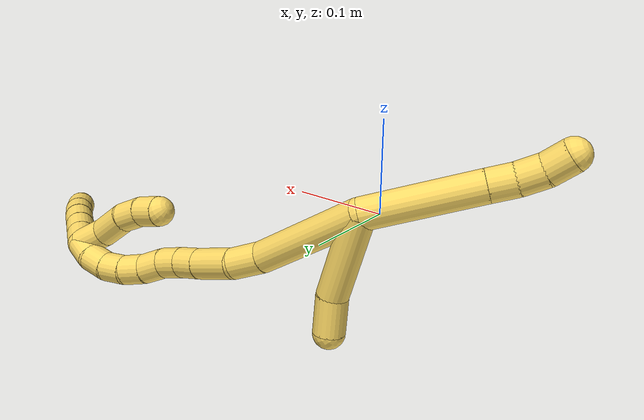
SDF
<sdf version="1.7">
 <world name="default">
  <model name="5">
   <static>0</static>
   <link name="5">
    <collision name="collision-cylinder-e_1_2_8">
     <pose>-0.019311 0.003249 -0.040401 -3.06135 -0.44463 2.79011</pose>
     <geometry><cylinder><radius>0.0125</radius><length>0.089792</length></cylinder></geometry>
     <surface>
      <friction><ode><mu>1.16</mu><mu2>1.16</mu2><slip1>0</slip1><slip2>0</slip2></ode></friction>
      <contact><ode><kp>1e+06</kp><kd>1</kd><max_vel>0</max_vel><min_depth>0.001</min_depth></ode></contact>
     </surface>
    </collision>
    <visual name="visual-cylinder-e_1_2_8">
     <pose>-0.019311 0.003249 -0.040401 -3.06135 -0.44463 2.79011</pose>
     <geometry><cylinder><radius>0.0125</radius><length>0.089792</length></cylinder></geometry>
     <material><ambient>1 0.858824 0.4 1</ambient></material>
    </visual>
    <collision name="collision-cylinder-e_2_8_9">
     <pose>-0.043101 0.007225 -0.089809 -3.06096 -0.460179 2.80053</pose>
     <geometry><cylinder><radius>0.0125</radius><length>0.020174</length></cylinder></geometry>
     <surface>
      <friction><ode><mu>1.16</mu><mu2>1.16</mu2><slip1>0</slip1><slip2>0</slip2></ode></friction>
      <contact><ode><kp>1e+06</kp><kd>1</kd><max_vel>0</max_vel><min_depth>0.001</min_depth></ode></contact>
     </surface>
    </collision>
    <visual name="visual-cylinder-e_2_8_9">
     <pose>-0.043101 0.007225 -0.089809 -3.06096 -0.460179 2.80053</pose>
     <geometry><cylinder><radius>0.0125</radius><length>0.020174</length></cylinder></geometry>
     <material><ambient>1 0.858824 0.4 1</ambient></material>
    </visual>
    <collision name="collision-cylinder-e_3_9_10">
     <pose>-0.050301 0.008608 -0.108424 -3.07354 -0.275332 2.65972</pose>
     <geometry><cylinder><radius>0.0125</radius><length>0.020011</length></cylinder></geometry>
     <surface>
      <friction><ode><mu>1.16</mu><mu2>1.16</mu2><slip1>0</slip1><slip2>0</slip2></ode></friction>
      <contact><ode><kp>1e+06</kp><kd>1</kd><max_vel>0</max_vel><min_depth>0.001</min_depth></ode></contact>
     </surface>
    </collision>
    <visual name="visual-cylinder-e_3_9_10">
     <pose>-0.050301 0.008608 -0.108424 -3.07354 -0.275332 2.65972</pose>
     <geometry><cylinder><radius>0.0125</radius><length>0.020011</length></cylinder></geometry>
     <material><ambient>1 0.858824 0.4 1</ambient></material>
    </visual>
    <collision name="collision-cylinder-e_4_10_6">
     <pose>-0.053655 0.010644 -0.127926 -3.00291 -0.063272 0.855097</pose>
     <geometry><cylinder><radius>0.0125</radius><length>0.020023</length></cylinder></geometry>
     <surface>
      <friction><ode><mu>1.16</mu><mu2>1.16</mu2><slip1>0</slip1><slip2>0</slip2></ode></friction>
      <contact><ode><kp>1e+06</kp><kd>1</kd><max_vel>0</max_vel><min_depth>0.001</min_depth></ode></contact>
     </surface>
    </collision>
    <visual name="visual-cylinder-e_4_10_6">
     <pose>-0.053655 0.010644 -0.127926 -3.00291 -0.063272 0.855097</pose>
     <geometry><cylinder><radius>0.0125</radius><length>0.020023</length></cylinder></geometry>
     <material><ambient>1 0.858824 0.4 1</ambient></material>
    </visual>
    <collision name="collision-cylinder-e_1_2_11">
     <pose>-0.016694 -0.014335 0.027116 0.486307 -0.498434 -0.1261</pose>
     <geometry><cylinder><radius>0.0125</radius><length>0.069843</length></cylinder></geometry>
     <surface>
      <friction><ode><mu>1.16</mu><mu2>1.16</mu2><slip1>0</slip1><slip2>0</slip2></ode></friction>
      <contact><ode><kp>1e+06</kp><kd>1</kd><max_vel>0</max_vel><min_depth>0.001</min_depth></ode></contact>
     </surface>
    </collision>
    <visual name="visual-cylinder-e_1_2_11">
     <pose>-0.016694 -0.014335 0.027116 0.486307 -0.498434 -0.1261</pose>
     <geometry><cylinder><radius>0.0125</radius><length>0.069843</length></cylinder></geometry>
     <material><ambient>1 0.858824 0.4 1</ambient></material>
    </visual>
    <collision name="collision-cylinder-e_2_11_5">
     <pose>-0.041714 -0.037479 0.063203 0.776347 -0.584924 -0.245016</pose>
     <geometry><cylinder><radius>0.0125</radius><length>0.030157</length></cylinder></geometry>
     <surface>
      <friction><ode><mu>1.16</mu><mu2>1.16</mu2><slip1>0</slip1><slip2>0</slip2></ode></friction>
      <contact><ode><kp>1e+06</kp><kd>1</kd><max_vel>0</max_vel><min_depth>0.001</min_depth></ode></contact>
     </surface>
    </collision>
    <visual name="visual-cylinder-e_2_11_5">
     <pose>-0.041714 -0.037479 0.063203 0.776347 -0.584924 -0.245016</pose>
     <geometry><cylinder><radius>0.0125</radius><length>0.030157</length></cylinder></geometry>
     <material><ambient>1 0.858824 0.4 1</ambient></material>
    </visual>
    <collision name="collision-cylinder-e_1_2_12">
     <pose>0.000942 0.002342 0.046941 -0.049844 0.020039 -0.0005</pose>
     <geometry><cylinder><radius>0.0125</radius><length>0.094018</length></cylinder></geometry>
     <surface>
      <friction><ode><mu>1.16</mu><mu2>1.16</mu2><slip1>0</slip1><slip2>0</slip2></ode></friction>
      <contact><ode><kp>1e+06</kp><kd>1</kd><max_vel>0</max_vel><min_depth>0.001</min_depth></ode></contact>
     </surface>
    </collision>
    <visual name="visual-cylinder-e_1_2_12">
     <pose>0.000942 0.002342 0.046941 -0.049844 0.020039 -0.0005</pose>
     <geometry><cylinder><radius>0.0125</radius><length>0.094018</length></cylinder></geometry>
     <material><ambient>1 0.858824 0.4 1</ambient></material>
    </visual>
    <collision name="collision-cylinder-e_2_12_13">
     <pose>0.004945 0.005762 0.106868 -0.082873 0.230749 -0.009609</pose>
     <geometry><cylinder><radius>0.0125</radius><length>0.02677</length></cylinder></geometry>
     <surface>
      <friction><ode><mu>1.16</mu><mu2>1.16</mu2><slip1>0</slip1><slip2>0</slip2></ode></friction>
      <contact><ode><kp>1e+06</kp><kd>1</kd><max_vel>0</max_vel><min_depth>0.001</min_depth></ode></contact>
     </surface>
    </collision>
    <visual name="visual-cylinder-e_2_12_13">
     <pose>0.004945 0.005762 0.106868 -0.082873 0.230749 -0.009609</pose>
     <geometry><cylinder><radius>0.0125</radius><length>0.02677</length></cylinder></geometry>
     <material><ambient>1 0.858824 0.4 1</ambient></material>
    </visual>
    <collision name="collision-cylinder-e_3_13_14">
     <pose>0.010572 0.012899 0.136872 -0.341993 0.141105 -0.024406</pose>
     <geometry><cylinder><radius>0.0125</radius><length>0.036491</length></cylinder></geometry>
     <surface>
      <friction><ode><mu>1.16</mu><mu2>1.16</mu2><slip1>0</slip1><slip2>0</slip2></ode></friction>
      <contact><ode><kp>1e+06</kp><kd>1</kd><max_vel>0</max_vel><min_depth>0.001</min_depth></ode></contact>
     </surface>
    </collision>
    <visual name="visual-cylinder-e_3_13_14">
     <pose>0.010572 0.012899 0.136872 -0.341993 0.141105 -0.024406</pose>
     <geometry><cylinder><radius>0.0125</radius><length>0.036491</length></cylinder></geometry>
     <material><ambient>1 0.858824 0.4 1</ambient></material>
    </visual>
    <collision name="collision-cylinder-e_4_14_15">
     <pose>0.014827 0.022782 0.163243 -0.388223 0.165551 -0.032617</pose>
     <geometry><cylinder><radius>0.0125</radius><length>0.02049</length></cylinder></geometry>
     <surface>
      <friction><ode><mu>1.16</mu><mu2>1.16</mu2><slip1>0</slip1><slip2>0</slip2></ode></friction>
      <contact><ode><kp>1e+06</kp><kd>1</kd><max_vel>0</max_vel><min_depth>0.001</min_depth></ode></contact>
     </surface>
    </collision>
    <visual name="visual-cylinder-e_4_14_15">
     <pose>0.014827 0.022782 0.163243 -0.388223 0.165551 -0.032617</pose>
     <geometry><cylinder><radius>0.0125</radius><length>0.02049</length></cylinder></geometry>
     <material><ambient>1 0.858824 0.4 1</ambient></material>
    </visual>
    <collision name="collision-cylinder-e_5_15_16">
     <pose>0.018443 0.029597 0.182199 -0.301847 0.189397 -0.028888</pose>
     <geometry><cylinder><radius>0.0125</radius><length>0.020483</length></cylinder></geometry>
     <surface>
      <friction><ode><mu>1.16</mu><mu2>1.16</mu2><slip1>0</slip1><slip2>0</slip2></ode></friction>
      <contact><ode><kp>1e+06</kp><kd>1</kd><max_vel>0</max_vel><min_depth>0.001</min_depth></ode></contact>
     </surface>
    </collision>
    <visual name="visual-cylinder-e_5_15_16">
     <pose>0.018443 0.029597 0.182199 -0.301847 0.189397 -0.028888</pose>
     <geometry><cylinder><radius>0.0125</radius><length>0.020483</length></cylinder></geometry>
     <material><ambient>1 0.858824 0.4 1</ambient></material>
    </visual>
    <collision name="collision-cylinder-e_6_16_17">
     <pose>0.022251 0.033207 0.202099 -0.060124 0.18021 -0.005434</pose>
     <geometry><cylinder><radius>0.0125</radius><length>0.020969</length></cylinder></geometry>
     <surface>
      <friction><ode><mu>1.16</mu><mu2>1.16</mu2><slip1>0</slip1><slip2>0</slip2></ode></friction>
      <contact><ode><kp>1e+06</kp><kd>1</kd><max_vel>0</max_vel><min_depth>0.001</min_depth></ode></contact>
     </surface>
    </collision>
    <visual name="visual-cylinder-e_6_16_17">
     <pose>0.022251 0.033207 0.202099 -0.060124 0.18021 -0.005434</pose>
     <geometry><cylinder><radius>0.0125</radius><length>0.020969</length></cylinder></geometry>
     <material><ambient>1 0.858824 0.4 1</ambient></material>
    </visual>
    <collision name="collision-cylinder-e_7_17_18">
     <pose>0.027608 0.035439 0.221704 -0.17147 0.352718 -0.03063</pose>
     <geometry><cylinder><radius>0.0125</radius><length>0.020136</length></cylinder></geometry>
     <surface>
      <friction><ode><mu>1.16</mu><mu2>1.16</mu2><slip1>0</slip1><slip2>0</slip2></ode></friction>
      <contact><ode><kp>1e+06</kp><kd>1</kd><max_vel>0</max_vel><min_depth>0.001</min_depth></ode></contact>
     </surface>
    </collision>
    <visual name="visual-cylinder-e_7_17_18">
     <pose>0.027608 0.035439 0.221704 -0.17147 0.352718 -0.03063</pose>
     <geometry><cylinder><radius>0.0125</radius><length>0.020136</length></cylinder></geometry>
     <material><ambient>1 0.858824 0.4 1</ambient></material>
    </visual>
    <collision name="collision-cylinder-e_8_18_19">
     <pose>0.034638 0.040809 0.239699 -0.408296 0.359141 -0.075128</pose>
     <geometry><cylinder><radius>0.0125</radius><length>0.020215</length></cylinder></geometry>
     <surface>
      <friction><ode><mu>1.16</mu><mu2>1.16</mu2><slip1>0</slip1><slip2>0</slip2></ode></friction>
      <contact><ode><kp>1e+06</kp><kd>1</kd><max_vel>0</max_vel><min_depth>0.001</min_depth></ode></contact>
     </surface>
    </collision>
    <visual name="visual-cylinder-e_8_18_19">
     <pose>0.034638 0.040809 0.239699 -0.408296 0.359141 -0.075128</pose>
     <geometry><cylinder><radius>0.0125</radius><length>0.020215</length></cylinder></geometry>
     <material><ambient>1 0.858824 0.4 1</ambient></material>
    </visual>
    <collision name="collision-cylinder-e_9_19_20">
     <pose>0.042359 0.050585 0.255469 -0.704268 0.421462 -0.156877</pose>
     <geometry><cylinder><radius>0.0125</radius><length>0.020377</length></cylinder></geometry>
     <surface>
      <friction><ode><mu>1.16</mu><mu2>1.16</mu2><slip1>0</slip1><slip2>0</slip2></ode></friction>
      <contact><ode><kp>1e+06</kp><kd>1</kd><max_vel>0</max_vel><min_depth>0.001</min_depth></ode></contact>
     </surface>
    </collision>
    <visual name="visual-cylinder-e_9_19_20">
     <pose>0.042359 0.050585 0.255469 -0.704268 0.421462 -0.156877</pose>
     <geometry><cylinder><radius>0.0125</radius><length>0.020377</length></cylinder></geometry>
     <material><ambient>1 0.858824 0.4 1</ambient></material>
    </visual>
    <collision name="collision-cylinder-e_10_20_1">
     <pose>0.049418 0.064636 0.267812 -0.99112 0.292532 -0.158931</pose>
     <geometry><cylinder><radius>0.0125</radius><length>0.020051</length></cylinder></geometry>
     <surface>
      <friction><ode><mu>1.16</mu><mu2>1.16</mu2><slip1>0</slip1><slip2>0</slip2></ode></friction>
      <contact><ode><kp>1e+06</kp><kd>1</kd><max_vel>0</max_vel><min_depth>0.001</min_depth></ode></contact>
     </surface>
    </collision>
    <visual name="visual-cylinder-e_10_20_1">
     <pose>0.049418 0.064636 0.267812 -0.99112 0.292532 -0.158931</pose>
     <geometry><cylinder><radius>0.0125</radius><length>0.020051</length></cylinder></geometry>
     <material><ambient>1 0.858824 0.4 1</ambient></material>
    </visual>
    <collision name="collision-cylinder-e_1_1_21">
     <pose>0.050331 0.073516 0.259609 -3.07864 -0.145594 2.32639</pose>
     <geometry><cylinder><radius>0.0125</radius><length>0.027264</length></cylinder></geometry>
     <surface>
      <friction><ode><mu>1.16</mu><mu2>1.16</mu2><slip1>0</slip1><slip2>0</slip2></ode></friction>
      <contact><ode><kp>1e+06</kp><kd>1</kd><max_vel>0</max_vel><min_depth>0.001</min_depth></ode></contact>
     </surface>
    </collision>
    <visual name="visual-cylinder-e_1_1_21">
     <pose>0.050331 0.073516 0.259609 -3.07864 -0.145594 2.32639</pose>
     <geometry><cylinder><radius>0.0125</radius><length>0.027264</length></cylinder></geometry>
     <material><ambient>1 0.858824 0.4 1</ambient></material>
    </visual>
    <collision name="collision-cylinder-e_2_21_22">
     <pose>0.04963 0.07419 0.230941 3.13009 0.083723 2.8688</pose>
     <geometry><cylinder><radius>0.0125</radius><length>0.030524</length></cylinder></geometry>
     <surface>
      <friction><ode><mu>1.16</mu><mu2>1.16</mu2><slip1>0</slip1><slip2>0</slip2></ode></friction>
      <contact><ode><kp>1e+06</kp><kd>1</kd><max_vel>0</max_vel><min_depth>0.001</min_depth></ode></contact>
     </surface>
    </collision>
    <visual name="visual-cylinder-e_2_21_22">
     <pose>0.04963 0.07419 0.230941 3.13009 0.083723 2.8688</pose>
     <geometry><cylinder><radius>0.0125</radius><length>0.030524</length></cylinder></geometry>
     <material><ambient>1 0.858824 0.4 1</ambient></material>
    </visual>
    <collision name="collision-cylinder-e_3_22_23">
     <pose>0.04971 0.072629 0.205233 3.01037 -0.112494 -1.41703</pose>
     <geometry><cylinder><radius>0.0125</radius><length>0.021316</length></cylinder></geometry>
     <surface>
      <friction><ode><mu>1.16</mu><mu2>1.16</mu2><slip1>0</slip1><slip2>0</slip2></ode></friction>
      <contact><ode><kp>1e+06</kp><kd>1</kd><max_vel>0</max_vel><min_depth>0.001</min_depth></ode></contact>
     </surface>
    </collision>
    <visual name="visual-cylinder-e_3_22_23">
     <pose>0.04971 0.072629 0.205233 3.01037 -0.112494 -1.41703</pose>
     <geometry><cylinder><radius>0.0125</radius><length>0.021316</length></cylinder></geometry>
     <material><ambient>1 0.858824 0.4 1</ambient></material>
    </visual>
    <collision name="collision-cylinder-e_4_23_4">
     <pose>0.046513 0.067711 0.185107 2.7899 -0.192595 -0.995895</pose>
     <geometry><cylinder><radius>0.0125</radius><length>0.020896</length></cylinder></geometry>
     <surface>
      <friction><ode><mu>1.16</mu><mu2>1.16</mu2><slip1>0</slip1><slip2>0</slip2></ode></friction>
      <contact><ode><kp>1e+06</kp><kd>1</kd><max_vel>0</max_vel><min_depth>0.001</min_depth></ode></contact>
     </surface>
    </collision>
    <visual name="visual-cylinder-e_4_23_4">
     <pose>0.046513 0.067711 0.185107 2.7899 -0.192595 -0.995895</pose>
     <geometry><cylinder><radius>0.0125</radius><length>0.020896</length></cylinder></geometry>
     <material><ambient>1 0.858824 0.4 1</ambient></material>
    </visual>
    <collision name="collision-cylinder-e_1_1_24">
     <pose>0.050807 0.081112 0.278211 -1.02395 -0.150724 0.08481</pose>
     <geometry><cylinder><radius>0.0125</radius><length>0.02</length></cylinder></geometry>
     <surface>
      <friction><ode><mu>1.16</mu><mu2>1.16</mu2><slip1>0</slip1><slip2>0</slip2></ode></friction>
      <contact><ode><kp>1e+06</kp><kd>1</kd><max_vel>0</max_vel><min_depth>0.001</min_depth></ode></contact>
     </surface>
    </collision>
    <visual name="visual-cylinder-e_1_1_24">
     <pose>0.050807 0.081112 0.278211 -1.02395 -0.150724 0.08481</pose>
     <geometry><cylinder><radius>0.0125</radius><length>0.02</length></cylinder></geometry>
     <material><ambient>1 0.858824 0.4 1</ambient></material>
    </visual>
    <collision name="collision-cylinder-e_2_24_25">
     <pose>0.047807 0.098002 0.288495 -1.02377 -0.150432 0.084627</pose>
     <geometry><cylinder><radius>0.0125</radius><length>0.02</length></cylinder></geometry>
     <surface>
      <friction><ode><mu>1.16</mu><mu2>1.16</mu2><slip1>0</slip1><slip2>0</slip2></ode></friction>
      <contact><ode><kp>1e+06</kp><kd>1</kd><max_vel>0</max_vel><min_depth>0.001</min_depth></ode></contact>
     </surface>
    </collision>
    <visual name="visual-cylinder-e_2_24_25">
     <pose>0.047807 0.098002 0.288495 -1.02377 -0.150432 0.084627</pose>
     <geometry><cylinder><radius>0.0125</radius><length>0.02</length></cylinder></geometry>
     <material><ambient>1 0.858824 0.4 1</ambient></material>
    </visual>
    <collision name="collision-cylinder-e_3_25_26">
     <pose>0.044637 0.114682 0.299056 -0.988897 -0.167944 0.090692</pose>
     <geometry><cylinder><radius>0.0125</radius><length>0.02</length></cylinder></geometry>
     <surface>
      <friction><ode><mu>1.16</mu><mu2>1.16</mu2><slip1>0</slip1><slip2>0</slip2></ode></friction>
      <contact><ode><kp>1e+06</kp><kd>1</kd><max_vel>0</max_vel><min_depth>0.001</min_depth></ode></contact>
     </surface>
    </collision>
    <visual name="visual-cylinder-e_3_25_26">
     <pose>0.044637 0.114682 0.299056 -0.988897 -0.167944 0.090692</pose>
     <geometry><cylinder><radius>0.0125</radius><length>0.02</length></cylinder></geometry>
     <material><ambient>1 0.858824 0.4 1</ambient></material>
    </visual>
    <collision name="collision-cylinder-e_4_26_27">
     <pose>0.040426 0.130813 0.310064 -0.954767 -0.256764 0.133358</pose>
     <geometry><cylinder><radius>0.0125</radius><length>0.02</length></cylinder></geometry>
     <surface>
      <friction><ode><mu>1.16</mu><mu2>1.16</mu2><slip1>0</slip1><slip2>0</slip2></ode></friction>
      <contact><ode><kp>1e+06</kp><kd>1</kd><max_vel>0</max_vel><min_depth>0.001</min_depth></ode></contact>
     </surface>
    </collision>
    <visual name="visual-cylinder-e_4_26_27">
     <pose>0.040426 0.130813 0.310064 -0.954767 -0.256764 0.133358</pose>
     <geometry><cylinder><radius>0.0125</radius><length>0.02</length></cylinder></geometry>
     <material><ambient>1 0.858824 0.4 1</ambient></material>
    </visual>
    <collision name="collision-cylinder-e_5_27_3">
     <pose>0.03445 0.146485 0.320916 -0.975848 -0.350764 0.18754</pose>
     <geometry><cylinder><radius>0.0125</radius><length>0.02</length></cylinder></geometry>
     <surface>
      <friction><ode><mu>1.16</mu><mu2>1.16</mu2><slip1>0</slip1><slip2>0</slip2></ode></friction>
      <contact><ode><kp>1e+06</kp><kd>1</kd><max_vel>0</max_vel><min_depth>0.001</min_depth></ode></contact>
     </surface>
    </collision>
    <visual name="visual-cylinder-e_5_27_3">
     <pose>0.03445 0.146485 0.320916 -0.975848 -0.350764 0.18754</pose>
     <geometry><cylinder><radius>0.0125</radius><length>0.02</length></cylinder></geometry>
     <material><ambient>1 0.858824 0.4 1</ambient></material>
    </visual>
    <collision name="collision-sphere-3">
     <pose>0.031014 0.154263 0.326179 0 -0 0</pose>
     <geometry><sphere><radius>0.0125</radius></sphere></geometry>
     <surface>
      <friction><ode><mu>1.16</mu><mu2>1.16</mu2><slip1>0</slip1><slip2>0</slip2></ode></friction>
      <contact><ode><kp>1e+06</kp><kd>1</kd><max_vel>0</max_vel><min_depth>0.001</min_depth></ode></contact>
     </surface>
    </collision>
    <visual name="visual-sphere-3">
     <pose>0.031014 0.154263 0.326179 0 -0 0</pose>
     <geometry><sphere><radius>0.0125</radius></sphere></geometry>
     <material><ambient>1 0.858824 0.4 1</ambient></material>
    </visual>
    <collision name="collision-sphere-27">
     <pose>0.037886 0.138708 0.315652 0 -0 0</pose>
     <geometry><sphere><radius>0.0125</radius></sphere></geometry>
     <surface>
      <friction><ode><mu>1.16</mu><mu2>1.16</mu2><slip1>0</slip1><slip2>0</slip2></ode></friction>
      <contact><ode><kp>1e+06</kp><kd>1</kd><max_vel>0</max_vel><min_depth>0.001</min_depth></ode></contact>
     </surface>
    </collision>
    <visual name="visual-sphere-27">
     <pose>0.037886 0.138708 0.315652 0 -0 0</pose>
     <geometry><sphere><radius>0.0125</radius></sphere></geometry>
     <material><ambient>1 0.858824 0.4 1</ambient></material>
    </visual>
    <collision name="collision-sphere-26">
     <pose>0.042966 0.122919 0.304475 0 -0 0</pose>
     <geometry><sphere><radius>0.0125</radius></sphere></geometry>
     <surface>
      <friction><ode><mu>1.16</mu><mu2>1.16</mu2><slip1>0</slip1><slip2>0</slip2></ode></friction>
      <contact><ode><kp>1e+06</kp><kd>1</kd><max_vel>0</max_vel><min_depth>0.001</min_depth></ode></contact>
     </surface>
    </collision>
    <visual name="visual-sphere-26">
     <pose>0.042966 0.122919 0.304475 0 -0 0</pose>
     <geometry><sphere><radius>0.0125</radius></sphere></geometry>
     <material><ambient>1 0.858824 0.4 1</ambient></material>
    </visual>
    <collision name="collision-sphere-25">
     <pose>0.046309 0.106446 0.293638 0 -0 0</pose>
     <geometry><sphere><radius>0.0125</radius></sphere></geometry>
     <surface>
      <friction><ode><mu>1.16</mu><mu2>1.16</mu2><slip1>0</slip1><slip2>0</slip2></ode></friction>
      <contact><ode><kp>1e+06</kp><kd>1</kd><max_vel>0</max_vel><min_depth>0.001</min_depth></ode></contact>
     </surface>
    </collision>
    <visual name="visual-sphere-25">
     <pose>0.046309 0.106446 0.293638 0 -0 0</pose>
     <geometry><sphere><radius>0.0125</radius></sphere></geometry>
     <material><ambient>1 0.858824 0.4 1</ambient></material>
    </visual>
    <collision name="collision-sphere-24">
     <pose>0.049306 0.089557 0.283352 0 -0 0</pose>
     <geometry><sphere><radius>0.0125</radius></sphere></geometry>
     <surface>
      <friction><ode><mu>1.16</mu><mu2>1.16</mu2><slip1>0</slip1><slip2>0</slip2></ode></friction>
      <contact><ode><kp>1e+06</kp><kd>1</kd><max_vel>0</max_vel><min_depth>0.001</min_depth></ode></contact>
     </surface>
    </collision>
    <visual name="visual-sphere-24">
     <pose>0.049306 0.089557 0.283352 0 -0 0</pose>
     <geometry><sphere><radius>0.0125</radius></sphere></geometry>
     <material><ambient>1 0.858824 0.4 1</ambient></material>
    </visual>
    <collision name="collision-sphere-4">
     <pose>0.044514 0.064178 0.175479 0 -0 0</pose>
     <geometry><sphere><radius>0.0125</radius></sphere></geometry>
     <surface>
      <friction><ode><mu>1.16</mu><mu2>1.16</mu2><slip1>0</slip1><slip2>0</slip2></ode></friction>
      <contact><ode><kp>1e+06</kp><kd>1</kd><max_vel>0</max_vel><min_depth>0.001</min_depth></ode></contact>
     </surface>
    </collision>
    <visual name="visual-sphere-4">
     <pose>0.044514 0.064178 0.175479 0 -0 0</pose>
     <geometry><sphere><radius>0.0125</radius></sphere></geometry>
     <material><ambient>1 0.858824 0.4 1</ambient></material>
    </visual>
    <collision name="collision-sphere-23">
     <pose>0.048513 0.071243 0.194734 0 -0 0</pose>
     <geometry><sphere><radius>0.0125</radius></sphere></geometry>
     <surface>
      <friction><ode><mu>1.16</mu><mu2>1.16</mu2><slip1>0</slip1><slip2>0</slip2></ode></friction>
      <contact><ode><kp>1e+06</kp><kd>1</kd><max_vel>0</max_vel><min_depth>0.001</min_depth></ode></contact>
     </surface>
    </collision>
    <visual name="visual-sphere-23">
     <pose>0.048513 0.071243 0.194734 0 -0 0</pose>
     <geometry><sphere><radius>0.0125</radius></sphere></geometry>
     <material><ambient>1 0.858824 0.4 1</ambient></material>
    </visual>
    <collision name="collision-sphere-22">
     <pose>0.050906 0.074015 0.215733 0 -0 0</pose>
     <geometry><sphere><radius>0.0125</radius></sphere></geometry>
     <surface>
      <friction><ode><mu>1.16</mu><mu2>1.16</mu2><slip1>0</slip1><slip2>0</slip2></ode></friction>
      <contact><ode><kp>1e+06</kp><kd>1</kd><max_vel>0</max_vel><min_depth>0.001</min_depth></ode></contact>
     </surface>
    </collision>
    <visual name="visual-sphere-22">
     <pose>0.050906 0.074015 0.215733 0 -0 0</pose>
     <geometry><sphere><radius>0.0125</radius></sphere></geometry>
     <material><ambient>1 0.858824 0.4 1</ambient></material>
    </visual>
    <collision name="collision-sphere-21">
     <pose>0.048354 0.074365 0.246148 0 -0 0</pose>
     <geometry><sphere><radius>0.0125</radius></sphere></geometry>
     <surface>
      <friction><ode><mu>1.16</mu><mu2>1.16</mu2><slip1>0</slip1><slip2>0</slip2></ode></friction>
      <contact><ode><kp>1e+06</kp><kd>1</kd><max_vel>0</max_vel><min_depth>0.001</min_depth></ode></contact>
     </surface>
    </collision>
    <visual name="visual-sphere-21">
     <pose>0.048354 0.074365 0.246148 0 -0 0</pose>
     <geometry><sphere><radius>0.0125</radius></sphere></geometry>
     <material><ambient>1 0.858824 0.4 1</ambient></material>
    </visual>
    <collision name="collision-sphere-1">
     <pose>0.052309 0.072668 0.27307 0 -0 0</pose>
     <geometry><sphere><radius>0.0125</radius></sphere></geometry>
     <surface>
      <friction><ode><mu>1.16</mu><mu2>1.16</mu2><slip1>0</slip1><slip2>0</slip2></ode></friction>
      <contact><ode><kp>1e+06</kp><kd>1</kd><max_vel>0</max_vel><min_depth>0.001</min_depth></ode></contact>
     </surface>
    </collision>
    <visual name="visual-sphere-1">
     <pose>0.052309 0.072668 0.27307 0 -0 0</pose>
     <geometry><sphere><radius>0.0125</radius></sphere></geometry>
     <material><ambient>1 0.858824 0.4 1</ambient></material>
    </visual>
    <collision name="collision-sphere-11">
     <pose>-0.033388 -0.02867 0.054233 0 -0 0</pose>
     <geometry><sphere><radius>0.0125</radius></sphere></geometry>
     <surface>
      <friction><ode><mu>1.16</mu><mu2>1.16</mu2><slip1>0</slip1><slip2>0</slip2></ode></friction>
      <contact><ode><kp>1e+06</kp><kd>1</kd><max_vel>0</max_vel><min_depth>0.001</min_depth></ode></contact>
     </surface>
    </collision>
    <visual name="visual-sphere-11">
     <pose>-0.033388 -0.02867 0.054233 0 -0 0</pose>
     <geometry><sphere><radius>0.0125</radius></sphere></geometry>
     <material><ambient>1 0.858824 0.4 1</ambient></material>
    </visual>
    <collision name="collision-sphere-6">
     <pose>-0.054288 0.012025 -0.137821 0 -0 0</pose>
     <geometry><sphere><radius>0.0125</radius></sphere></geometry>
     <surface>
      <friction><ode><mu>1.16</mu><mu2>1.16</mu2><slip1>0</slip1><slip2>0</slip2></ode></friction>
      <contact><ode><kp>1e+06</kp><kd>1</kd><max_vel>0</max_vel><min_depth>0.001</min_depth></ode></contact>
     </surface>
    </collision>
    <visual name="visual-sphere-6">
     <pose>-0.054288 0.012025 -0.137821 0 -0 0</pose>
     <geometry><sphere><radius>0.0125</radius></sphere></geometry>
     <material><ambient>1 0.858824 0.4 1</ambient></material>
    </visual>
    <collision name="collision-sphere-10">
     <pose>-0.053022 0.009263 -0.11803 0 -0 0</pose>
     <geometry><sphere><radius>0.0125</radius></sphere></geometry>
     <surface>
      <friction><ode><mu>1.16</mu><mu2>1.16</mu2><slip1>0</slip1><slip2>0</slip2></ode></friction>
      <contact><ode><kp>1e+06</kp><kd>1</kd><max_vel>0</max_vel><min_depth>0.001</min_depth></ode></contact>
     </surface>
    </collision>
    <visual name="visual-sphere-10">
     <pose>-0.053022 0.009263 -0.11803 0 -0 0</pose>
     <geometry><sphere><radius>0.0125</radius></sphere></geometry>
     <material><ambient>1 0.858824 0.4 1</ambient></material>
    </visual>
    <collision name="collision-sphere-9">
     <pose>-0.047581 0.007953 -0.098817 0 -0 0</pose>
     <geometry><sphere><radius>0.0125</radius></sphere></geometry>
     <surface>
      <friction><ode><mu>1.16</mu><mu2>1.16</mu2><slip1>0</slip1><slip2>0</slip2></ode></friction>
      <contact><ode><kp>1e+06</kp><kd>1</kd><max_vel>0</max_vel><min_depth>0.001</min_depth></ode></contact>
     </surface>
    </collision>
    <visual name="visual-sphere-9">
     <pose>-0.047581 0.007953 -0.098817 0 -0 0</pose>
     <geometry><sphere><radius>0.0125</radius></sphere></geometry>
     <material><ambient>1 0.858824 0.4 1</ambient></material>
    </visual>
    <collision name="collision-sphere-2">
     <geometry><sphere><radius>0.0125</radius></sphere></geometry>
     <surface>
      <friction><ode><mu>1.16</mu><mu2>1.16</mu2><slip1>0</slip1><slip2>0</slip2></ode></friction>
      <contact><ode><kp>1e+06</kp><kd>1</kd><max_vel>0</max_vel><min_depth>0.001</min_depth></ode></contact>
     </surface>
    </collision>
    <visual name="visual-sphere-2">
     <geometry><sphere><radius>0.0125</radius></sphere></geometry>
     <material><ambient>1 0.858824 0.4 1</ambient></material>
    </visual>
    <collision name="collision-sphere-19">
     <pose>0.038191 0.044566 0.248384 0 -0 0</pose>
     <geometry><sphere><radius>0.0125</radius></sphere></geometry>
     <surface>
      <friction><ode><mu>1.16</mu><mu2>1.16</mu2><slip1>0</slip1><slip2>0</slip2></ode></friction>
      <contact><ode><kp>1e+06</kp><kd>1</kd><max_vel>0</max_vel><min_depth>0.001</min_depth></ode></contact>
     </surface>
    </collision>
    <visual name="visual-sphere-19">
     <pose>0.038191 0.044566 0.248384 0 -0 0</pose>
     <geometry><sphere><radius>0.0125</radius></sphere></geometry>
     <material><ambient>1 0.858824 0.4 1</ambient></material>
    </visual>
    <collision name="collision-sphere-8">
     <pose>-0.038622 0.006497 -0.080801 0 -0 0</pose>
     <geometry><sphere><radius>0.0125</radius></sphere></geometry>
     <surface>
      <friction><ode><mu>1.16</mu><mu2>1.16</mu2><slip1>0</slip1><slip2>0</slip2></ode></friction>
      <contact><ode><kp>1e+06</kp><kd>1</kd><max_vel>0</max_vel><min_depth>0.001</min_depth></ode></contact>
     </surface>
    </collision>
    <visual name="visual-sphere-8">
     <pose>-0.038622 0.006497 -0.080801 0 -0 0</pose>
     <geometry><sphere><radius>0.0125</radius></sphere></geometry>
     <material><ambient>1 0.858824 0.4 1</ambient></material>
    </visual>
    <collision name="collision-sphere-5">
     <pose>-0.050039 -0.046288 0.072173 0 -0 0</pose>
     <geometry><sphere><radius>0.0125</radius></sphere></geometry>
     <surface>
      <friction><ode><mu>1.16</mu><mu2>1.16</mu2><slip1>0</slip1><slip2>0</slip2></ode></friction>
      <contact><ode><kp>1e+06</kp><kd>1</kd><max_vel>0</max_vel><min_depth>0.001</min_depth></ode></contact>
     </surface>
    </collision>
    <visual name="visual-sphere-5">
     <pose>-0.050039 -0.046288 0.072173 0 -0 0</pose>
     <geometry><sphere><radius>0.0125</radius></sphere></geometry>
     <material><ambient>1 0.858824 0.4 1</ambient></material>
    </visual>
    <collision name="collision-sphere-12">
     <pose>0.001884 0.004683 0.093882 0 -0 0</pose>
     <geometry><sphere><radius>0.0125</radius></sphere></geometry>
     <surface>
      <friction><ode><mu>1.16</mu><mu2>1.16</mu2><slip1>0</slip1><slip2>0</slip2></ode></friction>
      <contact><ode><kp>1e+06</kp><kd>1</kd><max_vel>0</max_vel><min_depth>0.001</min_depth></ode></contact>
     </surface>
    </collision>
    <visual name="visual-sphere-12">
     <pose>0.001884 0.004683 0.093882 0 -0 0</pose>
     <geometry><sphere><radius>0.0125</radius></sphere></geometry>
     <material><ambient>1 0.858824 0.4 1</ambient></material>
    </visual>
    <collision name="collision-sphere-13">
     <pose>0.008006 0.006841 0.119854 0 -0 0</pose>
     <geometry><sphere><radius>0.0125</radius></sphere></geometry>
     <surface>
      <friction><ode><mu>1.16</mu><mu2>1.16</mu2><slip1>0</slip1><slip2>0</slip2></ode></friction>
      <contact><ode><kp>1e+06</kp><kd>1</kd><max_vel>0</max_vel><min_depth>0.001</min_depth></ode></contact>
     </surface>
    </collision>
    <visual name="visual-sphere-13">
     <pose>0.008006 0.006841 0.119854 0 -0 0</pose>
     <geometry><sphere><radius>0.0125</radius></sphere></geometry>
     <material><ambient>1 0.858824 0.4 1</ambient></material>
    </visual>
    <collision name="collision-sphere-14">
     <pose>0.013138 0.018957 0.153889 0 -0 0</pose>
     <geometry><sphere><radius>0.0125</radius></sphere></geometry>
     <surface>
      <friction><ode><mu>1.16</mu><mu2>1.16</mu2><slip1>0</slip1><slip2>0</slip2></ode></friction>
      <contact><ode><kp>1e+06</kp><kd>1</kd><max_vel>0</max_vel><min_depth>0.001</min_depth></ode></contact>
     </surface>
    </collision>
    <visual name="visual-sphere-14">
     <pose>0.013138 0.018957 0.153889 0 -0 0</pose>
     <geometry><sphere><radius>0.0125</radius></sphere></geometry>
     <material><ambient>1 0.858824 0.4 1</ambient></material>
    </visual>
    <collision name="collision-sphere-15">
     <pose>0.016515 0.026607 0.172596 0 -0 0</pose>
     <geometry><sphere><radius>0.0125</radius></sphere></geometry>
     <surface>
      <friction><ode><mu>1.16</mu><mu2>1.16</mu2><slip1>0</slip1><slip2>0</slip2></ode></friction>
      <contact><ode><kp>1e+06</kp><kd>1</kd><max_vel>0</max_vel><min_depth>0.001</min_depth></ode></contact>
     </surface>
    </collision>
    <visual name="visual-sphere-15">
     <pose>0.016515 0.026607 0.172596 0 -0 0</pose>
     <geometry><sphere><radius>0.0125</radius></sphere></geometry>
     <material><ambient>1 0.858824 0.4 1</ambient></material>
    </visual>
    <collision name="collision-sphere-16">
     <pose>0.020371 0.032588 0.191803 0 -0 0</pose>
     <geometry><sphere><radius>0.0125</radius></sphere></geometry>
     <surface>
      <friction><ode><mu>1.16</mu><mu2>1.16</mu2><slip1>0</slip1><slip2>0</slip2></ode></friction>
      <contact><ode><kp>1e+06</kp><kd>1</kd><max_vel>0</max_vel><min_depth>0.001</min_depth></ode></contact>
     </surface>
    </collision>
    <visual name="visual-sphere-16">
     <pose>0.020371 0.032588 0.191803 0 -0 0</pose>
     <geometry><sphere><radius>0.0125</radius></sphere></geometry>
     <material><ambient>1 0.858824 0.4 1</ambient></material>
    </visual>
    <collision name="collision-sphere-17">
     <pose>0.02413 0.033827 0.212395 0 -0 0</pose>
     <geometry><sphere><radius>0.0125</radius></sphere></geometry>
     <surface>
      <friction><ode><mu>1.16</mu><mu2>1.16</mu2><slip1>0</slip1><slip2>0</slip2></ode></friction>
      <contact><ode><kp>1e+06</kp><kd>1</kd><max_vel>0</max_vel><min_depth>0.001</min_depth></ode></contact>
     </surface>
    </collision>
    <visual name="visual-sphere-17">
     <pose>0.02413 0.033827 0.212395 0 -0 0</pose>
     <geometry><sphere><radius>0.0125</radius></sphere></geometry>
     <material><ambient>1 0.858824 0.4 1</ambient></material>
    </visual>
    <collision name="collision-sphere-18">
     <pose>0.031086 0.037051 0.231014 0 -0 0</pose>
     <geometry><sphere><radius>0.0125</radius></sphere></geometry>
     <surface>
      <friction><ode><mu>1.16</mu><mu2>1.16</mu2><slip1>0</slip1><slip2>0</slip2></ode></friction>
      <contact><ode><kp>1e+06</kp><kd>1</kd><max_vel>0</max_vel><min_depth>0.001</min_depth></ode></contact>
     </surface>
    </collision>
    <visual name="visual-sphere-18">
     <pose>0.031086 0.037051 0.231014 0 -0 0</pose>
     <geometry><sphere><radius>0.0125</radius></sphere></geometry>
     <material><ambient>1 0.858824 0.4 1</ambient></material>
    </visual>
    <collision name="collision-sphere-20">
     <pose>0.046527 0.056604 0.262553 0 -0 0</pose>
     <geometry><sphere><radius>0.0125</radius></sphere></geometry>
     <surface>
      <friction><ode><mu>1.16</mu><mu2>1.16</mu2><slip1>0</slip1><slip2>0</slip2></ode></friction>
      <contact><ode><kp>1e+06</kp><kd>1</kd><max_vel>0</max_vel><min_depth>0.001</min_depth></ode></contact>
     </surface>
    </collision>
    <visual name="visual-sphere-20">
     <pose>0.046527 0.056604 0.262553 0 -0 0</pose>
     <geometry><sphere><radius>0.0125</radius></sphere></geometry>
     <material><ambient>1 0.858824 0.4 1</ambient></material>
    </visual>
    <inertial>
     <pose>0.009384 0.031767 0.119204 0 -0 0</pose>
     <mass>0.75</mass>
     <inertia><ixx>8e-05</ixx><ixy>0</ixy><ixz>0</ixz><iyy>0.000218</iyy><iyz>0</iyz><izz>4.9e-05</izz></inertia>
    </inertial>
   </link>
   <pose>-0.137543 0.235602 0.108541 2.41372 -0.682638 1.16089</pose>
  </model>
 </world>
</sdf>
